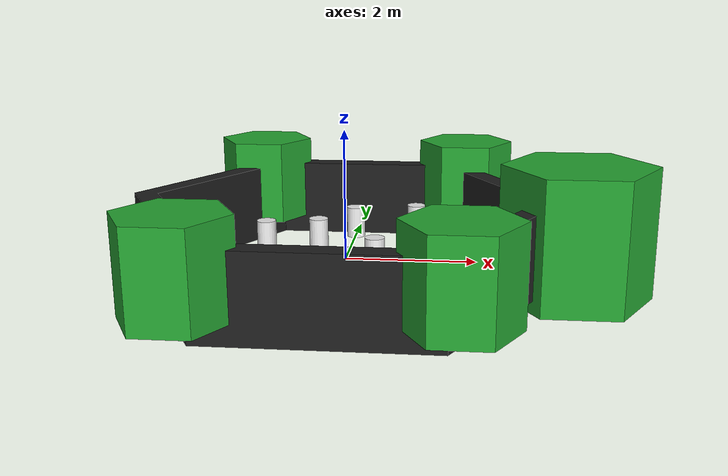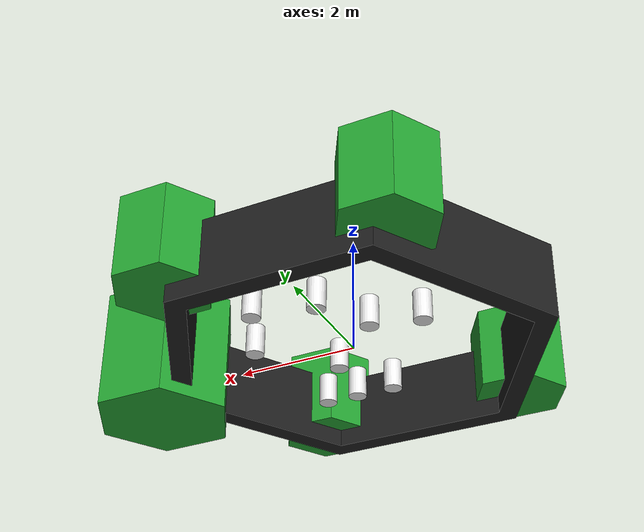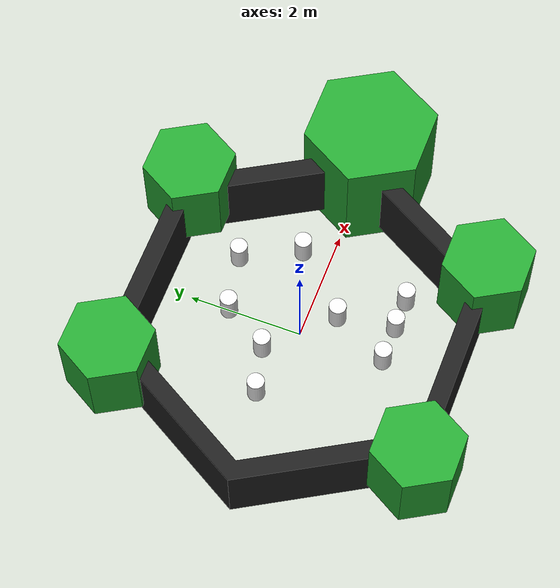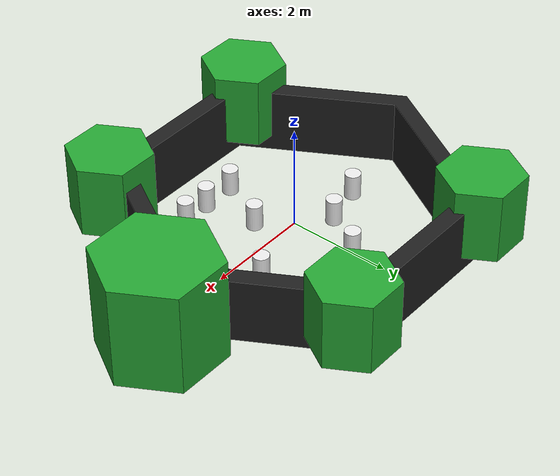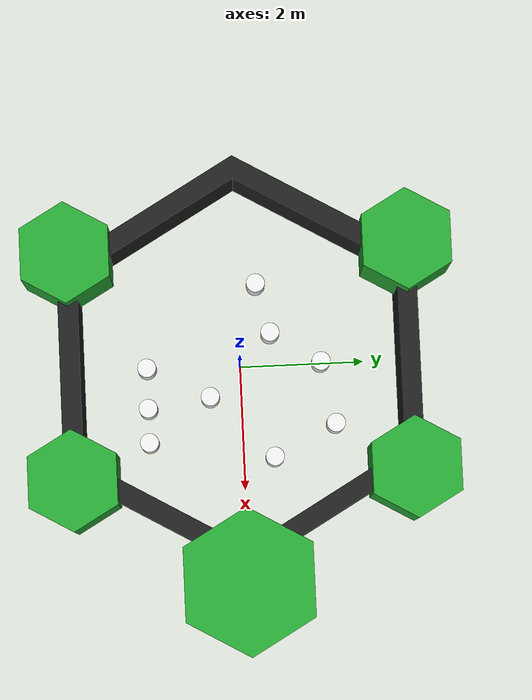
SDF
<sdf version='1.5'>
    <!-- Draw Circle -->
    <model name='ros_symbol'>
      <static>1</static>
      <link name='symbol'>
        <collision name='one_one'>
          <pose>-1.3 0.3 0.25 0 0 0</pose>
          <geometry>
            <cylinder>
              <radius>0.15</radius>
              <length>0.5</length>
            </cylinder>
          </geometry>
          <max_contacts>10</max_contacts>
          <surface>
            <bounce/>
            <friction>
              <ode/>
            </friction>
            <contact>
              <ode/>
            </contact>
          </surface>
        </collision>

        <visual name='one_one'>
          <pose>-1.3 0.3 0.25 0 0 0</pose>
          <geometry>
            <cylinder>
              <radius>0.15</radius>
              <length>0.5</length>
            </cylinder>
          </geometry>
          <material>
            <script>
              <uri>file://media/materials/scripts/gazebo.material</uri>
              <name>Gazebo/White</name>
            </script>
          </material>
        </visual>

	<collision name='two_three'>
          <pose>0 -1.5 0.25 0 0 0</pose>
          <geometry>
            <cylinder>
              <radius>0.15</radius>
              <length>0.5</length>
            </cylinder>
          </geometry>
          <max_contacts>10</max_contacts>
          <surface>
            <bounce/>
            <friction>
              <ode/>
            </friction>
            <contact>
              <ode/>
            </contact>
          </surface>
        </collision>

        <visual name='two_three'>
          <pose>0 -1.5 0.25 0 0 0</pose>
          <geometry>
            <cylinder>
              <radius>0.15</radius>
              <length>0.5</length>
            </cylinder>
          </geometry>
          <material>
            <script>
              <uri>file://media/materials/scripts/gazebo.material</uri>
              <name>Gazebo/White</name>
            </script>
          </material>
        </visual>

        <collision name='two_two'>
          <pose>0.65 -1.5 0.25 0 0 0</pose>
          <geometry>
            <cylinder>
              <radius>0.15</radius>
              <length>0.5</length>
            </cylinder>
          </geometry>
          <max_contacts>10</max_contacts>
          <surface>
            <bounce/>
            <friction>
              <ode/>
            </friction>
            <contact>
              <ode/>
            </contact>
          </surface>
        </collision>

        <visual name='two_two'>
          <pose>0.65 -1.5 0.25 0 0 0</pose>
          <geometry>
            <cylinder>
              <radius>0.15</radius>
              <length>0.5</length>
            </cylinder>
          </geometry>
          <material>
            <script>
              <uri>file://media/materials/scripts/gazebo.material</uri>
              <name>Gazebo/White</name>
            </script>
          </material>
        </visual>

        <collision name='three_one'>
          <pose>0.5 -0.5 0.25 0 0 0</pose>
          <geometry>
            <cylinder>
              <radius>0.15</radius>
              <length>0.5</length>
            </cylinder>
          </geometry>
          <max_contacts>10</max_contacts>
          <surface>
            <bounce/>
            <friction>
              <ode/>
            </friction>
            <contact>
              <ode/>
            </contact>
          </surface>
        </collision>

        <visual name='three_one'>
          <pose>0.5 -0.5 0.25 0 0 0</pose>
          <geometry>
            <cylinder>
              <radius>0.15</radius>
              <length>0.5</length>
            </cylinder>
          </geometry>
          <material>
            <script>
              <uri>file://media/materials/scripts/gazebo.material</uri>
              <name>Gazebo/White</name>
            </script>
          </material>
        </visual>

        <collision name='three_three'>
          <pose>1.5 0.5 0.25 0 0 0</pose>
          <geometry>
            <cylinder>
              <radius>0.15</radius>
              <length>0.5</length>
            </cylinder>
          </geometry>
          <max_contacts>10</max_contacts>
          <surface>
            <bounce/>
            <friction>
              <ode/>
            </friction>
            <contact>
              <ode/>
            </contact>
          </surface>
        </collision>

        <visual name='three_three'>
          <pose>1.5 0.5 0.25 0 0 0</pose>
          <geometry>
            <cylinder>
              <radius>0.15</radius>
              <length>0.5</length>
            </cylinder>
          </geometry>
          <material>
            <script>
              <uri>file://media/materials/scripts/gazebo.material</uri>
              <name>Gazebo/White</name>
            </script>
          </material>
        </visual>

        <collision name='four_one'>
          <pose>1.0 1.5 0.25 0 0 0</pose>
          <geometry>
            <cylinder>
              <radius>0.15</radius>
              <length>0.5</length>
            </cylinder>
          </geometry>
          <max_contacts>10</max_contacts>
          <surface>
            <bounce/>
            <friction>
              <ode/>
            </friction>
            <contact>
              <ode/>
            </contact>
          </surface>
        </collision>

        <visual name='four_one'>
          <pose>1.0 1.5 0.25 0 0 0</pose>
          <geometry>
            <cylinder>
              <radius>0.15</radius>
              <length>0.5</length>
            </cylinder>
          </geometry>
          <material>
            <script>
              <uri>file://media/materials/scripts/gazebo.material</uri>
              <name>Gazebo/White</name>
            </script>
          </material>
        </visual>

        <collision name='four_three'>
          <pose>1.2 -1.5 0.25 0 0 0</pose>
          <geometry>
            <cylinder>
              <radius>0.15</radius>
              <length>0.5</length>
            </cylinder>
          </geometry>
          <max_contacts>10</max_contacts>
          <surface>
            <bounce/>
            <friction>
              <ode/>
            </friction>
            <contact>
              <ode/>
            </contact>
          </surface>
        </collision>

        <visual name='four_three'>
          <pose>1.2 -1.5 0.25 0 0 0</pose>
          <geometry>
            <cylinder>
              <radius>0.15</radius>
              <length>0.5</length>
            </cylinder>
          </geometry>
          <material>
            <script>
              <uri>file://media/materials/scripts/gazebo.material</uri>
              <name>Gazebo/White</name>
            </script>
          </material>
        </visual>

        <collision name='four_four'>
          <pose>-0.5 0.5 0.25 0 0 0</pose>
          <geometry>
            <cylinder>
              <radius>0.15</radius>
              <length>0.5</length>
            </cylinder>
          </geometry>
          <max_contacts>10</max_contacts>
          <surface>
            <bounce/>
            <friction>
              <ode/>
            </friction>
            <contact>
              <ode/>
            </contact>
          </surface>
        </collision>

        <visual name='four_four'>
          <pose>-0.5 0.5 0.25 0 0 0</pose>
          <geometry>
            <cylinder>
              <radius>0.15</radius>
              <length>0.5</length>
            </cylinder>
          </geometry>
          <material>
            <script>
              <uri>file://media/materials/scripts/gazebo.material</uri>
              <name>Gazebo/White</name>
            </script>
          </material>
        </visual>

        <collision name='four_five'>
          <pose>0.0 1.3 0.25 0 0 0</pose>
          <geometry>
            <cylinder>
              <radius>0.15</radius>
              <length>0.5</length>
            </cylinder>
          </geometry>
          <max_contacts>10</max_contacts>
          <surface>
            <bounce/>
            <friction>
              <ode/>
            </friction>
            <contact>
              <ode/>
            </contact>
          </surface>
        </collision>

        <visual name='four_five'>
          <pose>0.0 1.3 0.25 0 0 0</pose>
          <geometry>
            <cylinder>
              <radius>0.15</radius>
              <length>0.5</length>
            </cylinder>
          </geometry>
          <material>
            <script>
              <uri>file://media/materials/scripts/gazebo.material</uri>
              <name>Gazebo/White</name>
            </script>
          </material>
        </visual>

        <!-- Draw Hexagon -->
        <collision name='head'>
          <pose>3.5 0 -0.5 0 0 0</pose>
          <geometry>
            <mesh>
              <uri>model://turtlebot3_world/meshes/hexagon.dae</uri>
              <scale>0.8 0.8 0.8</scale>
            </mesh>
          </geometry>
          <max_contacts>10</max_contacts>
          <surface>
            <bounce/>
            <friction>
              <ode/>
            </friction>
            <contact>
              <ode/>
            </contact>
          </surface>
        </collision>

        <visual name='head'>
          <pose>3.5 0 -0.5 0 0 0</pose>
          <geometry>
            <mesh>
              <uri>model://turtlebot3_world/meshes/hexagon.dae</uri>
              <scale>0.8 0.8 0.8</scale>
            </mesh>
          </geometry>
          <material>
            <script>
              <uri>file://media/materials/scripts/gazebo.material</uri>
              <name>Gazebo/Green</name>
            </script>
          </material>
        </visual>

        <collision name='left_hand'>
          <pose>1.8 2.7 0 0 0 0</pose>
          <geometry>
            <mesh>
              <uri>model://turtlebot3_world/meshes/hexagon.dae</uri>
              <scale>0.55 0.55 0.55</scale>
            </mesh>
          </geometry>
          <max_contacts>10</max_contacts>
          <surface>
            <bounce/>
            <friction>
              <ode/>
            </friction>
            <contact>
              <ode/>
            </contact>
          </surface>
        </collision>

        <visual name='left_hand'>
          <pose>1.8 2.7 0 0 0 0</pose>
          <geometry>
            <mesh>
              <uri>model://turtlebot3_world/meshes/hexagon.dae</uri>
              <scale>0.55 0.55 0.55</scale>
            </mesh>
          </geometry>
          <material>
            <script>
              <uri>file://media/materials/scripts/gazebo.material</uri>
              <name>Gazebo/Green</name>
            </script>
          </material>
        </visual>

        <collision name='right_hand'>
          <pose>1.8 -2.7 0 0 0 0</pose>
          <geometry>
            <mesh>
              <uri>model://turtlebot3_world/meshes/hexagon.dae</uri>
              <scale>0.55 0.55 0.55</scale>
            </mesh>
          </geometry>
          <max_contacts>10</max_contacts>
          <surface>
            <bounce/>
            <friction>
              <ode/>
            </friction>
            <contact>
              <ode/>
            </contact>
          </surface>
        </collision>

        <visual name='right_hand'>
          <pose>1.8 -2.7 0 0 0 0</pose>
          <geometry>
            <mesh>
              <uri>model://turtlebot3_world/meshes/hexagon.dae</uri>
              <scale>0.55 0.55 0.55</scale>
            </mesh>
          </geometry>
          <material>
            <script>
              <uri>file://media/materials/scripts/gazebo.material</uri>
              <name>Gazebo/Green</name>
            </script>
          </material>
        </visual>

        <collision name='left_foot'>
          <pose>-1.8 2.7 0 0 0 0</pose>
          <geometry>
            <mesh>
              <uri>model://turtlebot3_world/meshes/hexagon.dae</uri>
              <scale>0.55 0.55 0.55</scale>
            </mesh>
          </geometry>
          <max_contacts>10</max_contacts>
          <surface>
            <bounce/>
            <friction>
              <ode/>
            </friction>
            <contact>
              <ode/>
            </contact>
          </surface>
        </collision>

        <visual name='left_foot'>
          <pose>-1.8 2.7 0 0 0 0</pose>
          <geometry>
            <mesh>
              <uri>model://turtlebot3_world/meshes/hexagon.dae</uri>
              <scale>0.55 0.55 0.55</scale>
            </mesh>
          </geometry>
          <material>
            <script>
              <uri>file://media/materials/scripts/gazebo.material</uri>
              <name>Gazebo/Green</name>
            </script>
          </material>
        </visual>

        <collision name='right_foot'>
          <pose>-1.8 -2.7 0 0 0 0</pose>
          <geometry>
            <mesh>
              <uri>model://turtlebot3_world/meshes/hexagon.dae</uri>
              <scale>0.55 0.55 0.55</scale>
            </mesh>
          </geometry>
          <max_contacts>10</max_contacts>
          <surface>
            <bounce/>
            <friction>
              <ode/>
            </friction>
            <contact>
              <ode/>
            </contact>
          </surface>
        </collision>

        <visual name='right_foot'>
          <pose>-1.8 -2.7 0 0 0 0</pose>
          <geometry>
            <mesh>
              <uri>model://turtlebot3_world/meshes/hexagon.dae</uri>
              <scale>0.55 0.55 0.55</scale>
            </mesh>
          </geometry>
          <material>
            <script>
              <uri>file://media/materials/scripts/gazebo.material</uri>
              <name>Gazebo/Green</name>
            </script>
          </material>
        </visual>

        <!-- Draw Wall -->
        <collision name='body'>
        <pose>0 0 -0.3 0 0 -1.5708</pose>
        <geometry>
          <mesh>
            <uri>model://turtlebot3_world/meshes/wall.dae</uri>
            <scale>0.25 0.25 0.25</scale>
          </mesh>
        </geometry>
        <max_contacts>10</max_contacts>
        <surface>
          <bounce/>
          <friction>
            <ode/>
          </friction>
          <contact>
            <ode/>
          </contact>
        </surface>
      </collision>

      <visual name='body'>
        <pose>0 0 -0.3 0 0 -1.5708</pose>
        <geometry>
          <mesh>
            <uri>model://turtlebot3_world/meshes/wall.dae</uri>
            <scale>0.25 0.25 0.25</scale>
          </mesh>
        </geometry>
        <material>
          <script>
            <uri>file://media/materials/scripts/gazebo.material</uri>
            <name>Gazebo/FlatBlack</name>
          </script>
        </material>
      </visual>
    </link>
  </model>
</sdf>
